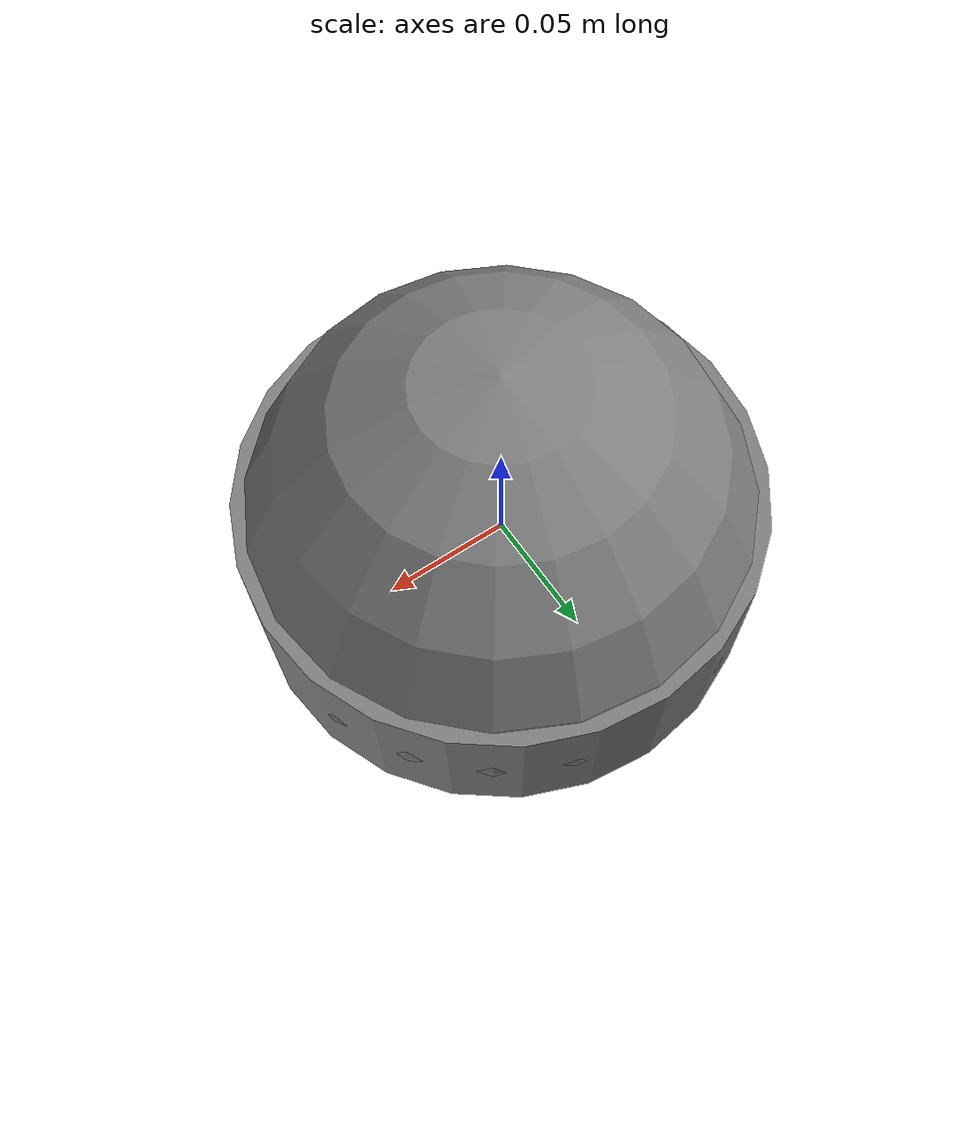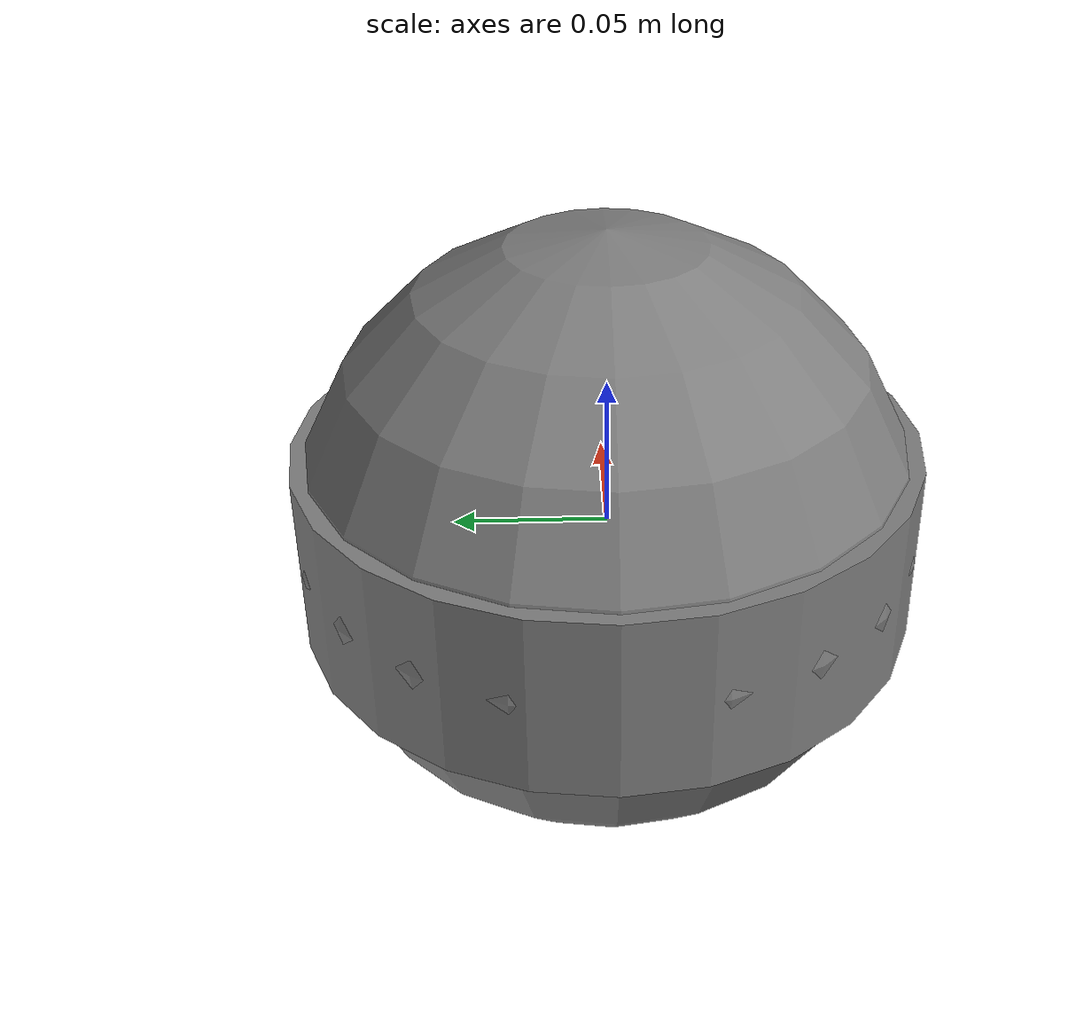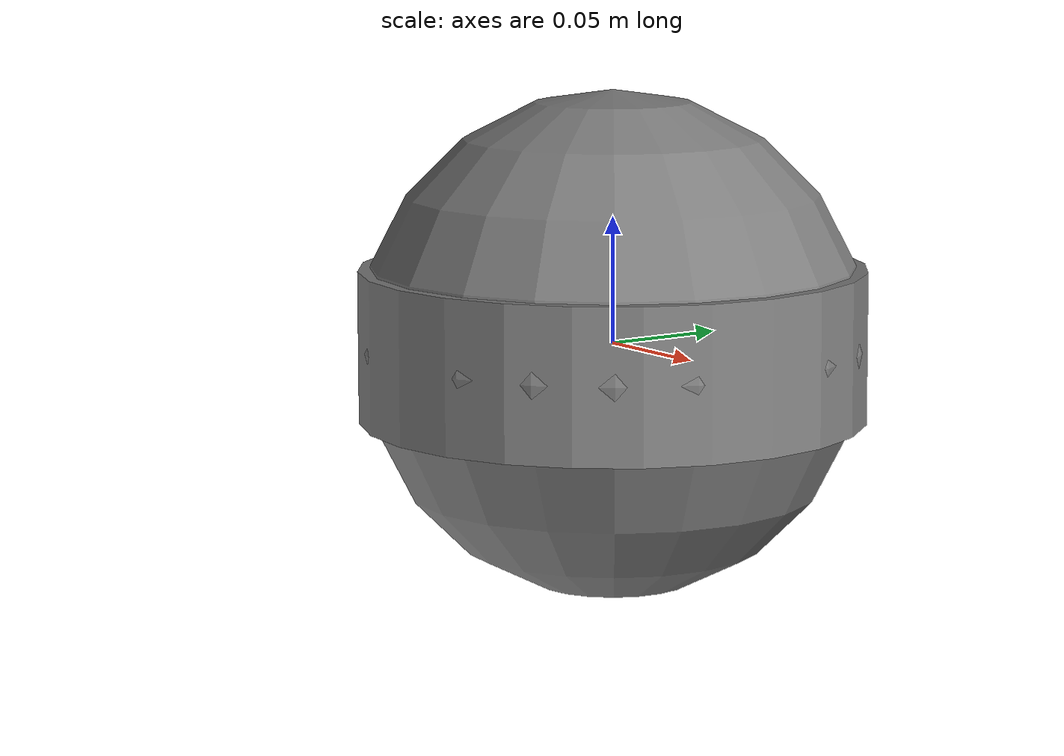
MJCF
<mujoco model="velocity_general"><worldbody><body name="base"><geom type="sphere" size="0.1" mass="1"/><body name="wheel"><joint name="wheel_joint" type="hinge" axis="0 1 0"/><geom type="cylinder" size="0.1 0.03" mass="0.2"/></body></body></worldbody><actuator><velocity name="wheel_velocity" joint="wheel_joint" kv="8"/><general name="wheel_aux" joint="wheel_joint" gainprm="2 0 0" biasprm="0 0 -1"/></actuator></mujoco>
